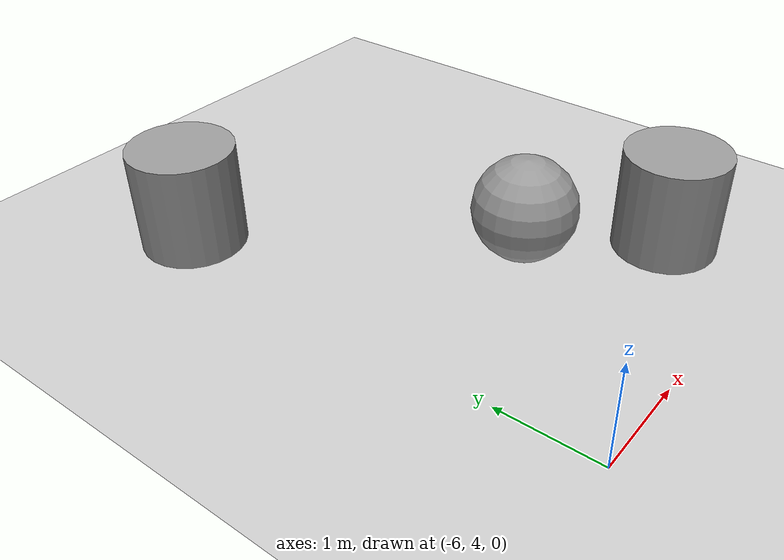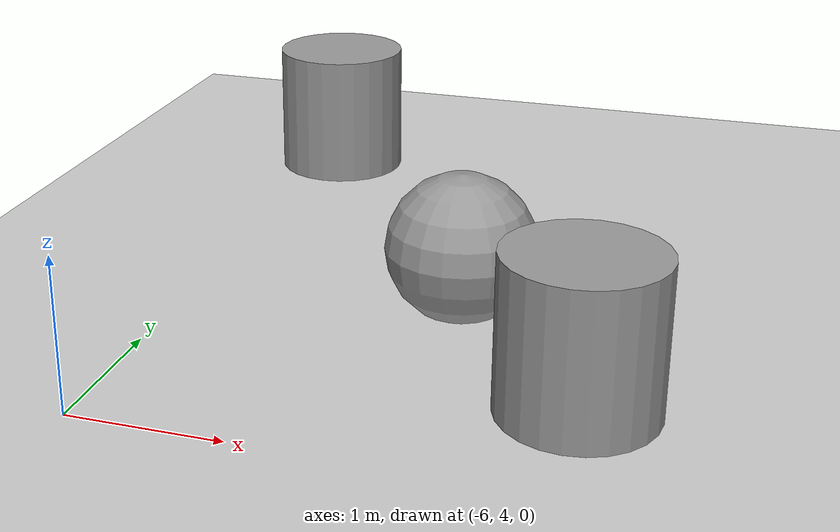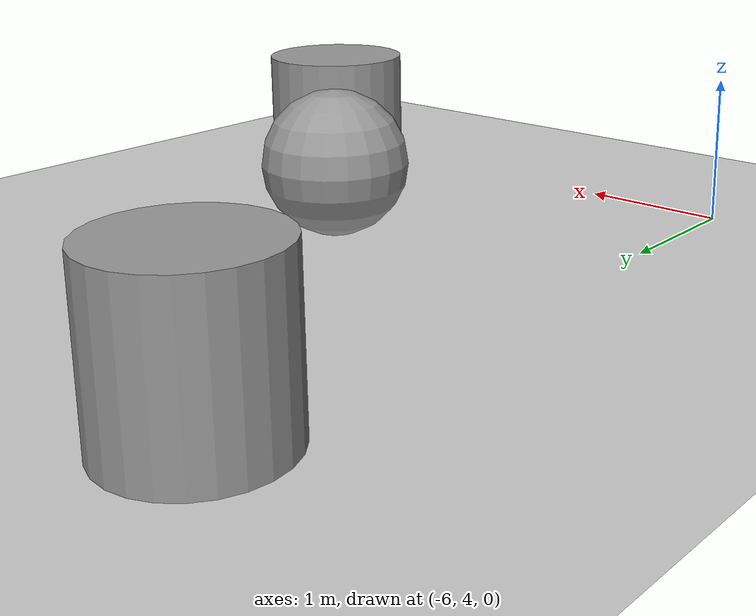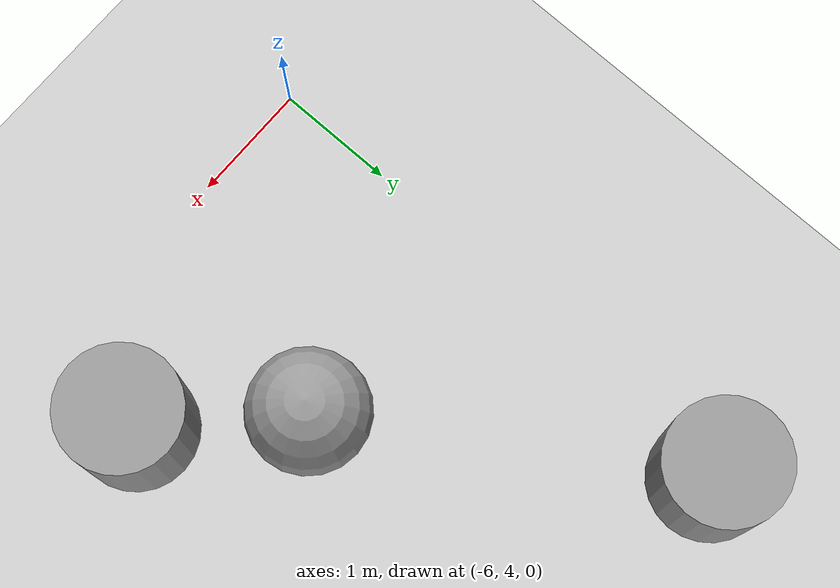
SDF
<sdf version="1.7">
 <world name="default">
  <model name="ground_plane">
   <static>1</static>
   <link name="link">
    <collision name="collision">
     <geometry><plane><normal>0 0 1</normal><size>100 100</size></plane></geometry>
     <surface>
      <contact><collide_bitmask>65535</collide_bitmask></contact>
      <friction><ode><mu>100</mu><mu2>50</mu2></ode></friction>
     </surface>
    </collision>
    <visual name="visual">
     <cast_shadows>0</cast_shadows>
     <geometry><plane><normal>0 0 1</normal><size>100 100</size></plane></geometry>
     <material>
      <script><uri>file://media/materials/scripts/gazebo.material</uri><name>Gazebo/Grey</name></script>
     </material>
    </visual>
   </link>
  </model>
  <model name="unit_cylinder_0">
   <pose>-5.8302 8.55959 0.499996 -4e-06 2e-06 0</pose>
   <link name="link">
    <inertial>
     <mass>1</mass>
     <inertia><ixx>0.145833</ixx><ixy>0</ixy><ixz>0</ixz><iyy>0.145833</iyy><iyz>0</iyz><izz>0.125</izz></inertia>
    </inertial>
    <collision name="collision">
     <geometry><cylinder><radius>0.5</radius><length>1</length></cylinder></geometry>
    </collision>
    <visual name="visual">
     <geometry><cylinder><radius>0.5</radius><length>1</length></cylinder></geometry>
     <material>
      <script><name>Gazebo/Grey</name><uri>file://media/materials/scripts/gazebo.material</uri></script>
     </material>
    </visual>
   </link>
  </model>
  <model name="unit_cylinder_1">
   <pose>-3.18066 4.92111 0.499996 -4e-06 2e-06 0</pose>
   <link name="link">
    <inertial>
     <mass>1</mass>
     <inertia><ixx>0.145833</ixx><ixy>0</ixy><ixz>0</ixz><iyy>0.145833</iyy><iyz>0</iyz><izz>0.125</izz></inertia>
    </inertial>
    <collision name="collision">
     <geometry><cylinder><radius>0.5</radius><length>1</length></cylinder></geometry>
    </collision>
    <visual name="visual">
     <geometry><cylinder><radius>0.5</radius><length>1</length></cylinder></geometry>
     <material>
      <script><name>Gazebo/Grey</name><uri>file://media/materials/scripts/gazebo.material</uri></script>
     </material>
    </visual>
   </link>
  </model>
  <model name="unit_sphere">
   <pose>-4.12896 5.91613 0.5 0 -0 0</pose>
   <link name="link">
    <inertial>
     <mass>1</mass>
     <inertia><ixx>0.1</ixx><ixy>0</ixy><ixz>0</ixz><iyy>0.1</iyy><iyz>0</iyz><izz>0.1</izz></inertia>
    </inertial>
    <collision name="collision"><geometry><sphere><radius>0.5</radius></sphere></geometry></collision>
    <visual name="visual">
     <geometry><sphere><radius>0.5</radius></sphere></geometry>
     <material>
      <script><name>Gazebo/Grey</name><uri>file://media/materials/scripts/gazebo.material</uri></script>
     </material>
    </visual>
   </link>
  </model>
 </world>
</sdf>
